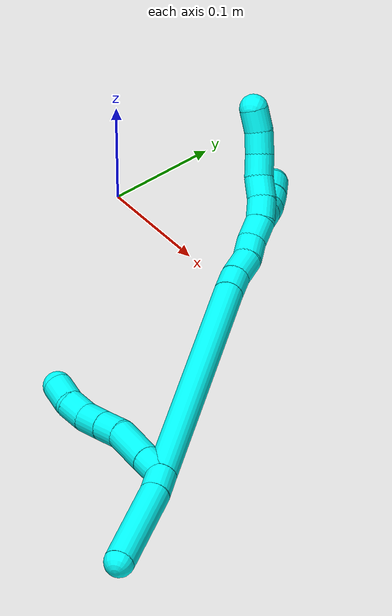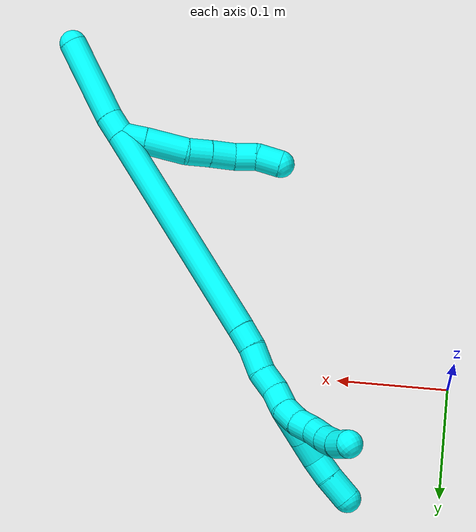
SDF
<sdf version="1.7">
 <world name="default">
  <model name="3">
   <static>0</static>
   <link name="3">
    <collision name="collision-cylinder-e_1_2_8">
     <pose>0.000132 0.008292 -0.007292 -2.29215 0.011968 -0.026463</pose>
     <geometry><cylinder><radius>0.0125</radius><length>0.022086</length></cylinder></geometry>
     <surface>
      <friction><ode><mu>1.16</mu><mu2>1.16</mu2><slip1>0</slip1><slip2>0</slip2></ode></friction>
      <contact><ode><kp>1e+06</kp><kd>1</kd><max_vel>0</max_vel><min_depth>0.001</min_depth></ode></contact>
     </surface>
    </collision>
    <visual name="visual-cylinder-e_1_2_8">
     <pose>0.000132 0.008292 -0.007292 -2.29215 0.011968 -0.026463</pose>
     <geometry><cylinder><radius>0.0125</radius><length>0.022086</length></cylinder></geometry>
     <material><ambient>0.003922 1 0.996078 1</ambient></material>
    </visual>
    <collision name="collision-cylinder-e_2_8_9">
     <pose>3e-06 0.030826 -0.028237 -2.33503 -0.013257 0.031069</pose>
     <geometry><cylinder><radius>0.0125</radius><length>0.039461</length></cylinder></geometry>
     <surface>
      <friction><ode><mu>1.16</mu><mu2>1.16</mu2><slip1>0</slip1><slip2>0</slip2></ode></friction>
      <contact><ode><kp>1e+06</kp><kd>1</kd><max_vel>0</max_vel><min_depth>0.001</min_depth></ode></contact>
     </surface>
    </collision>
    <visual name="visual-cylinder-e_2_8_9">
     <pose>3e-06 0.030826 -0.028237 -2.33503 -0.013257 0.031069</pose>
     <geometry><cylinder><radius>0.0125</radius><length>0.039461</length></cylinder></geometry>
     <material><ambient>0.003922 1 0.996078 1</ambient></material>
    </visual>
    <collision name="collision-cylinder-e_3_9_10">
     <pose>-0.001607 0.054325 -0.047343 -2.10325 -0.124838 0.217873</pose>
     <geometry><cylinder><radius>0.0125</radius><length>0.021657</length></cylinder></geometry>
     <surface>
      <friction><ode><mu>1.16</mu><mu2>1.16</mu2><slip1>0</slip1><slip2>0</slip2></ode></friction>
      <contact><ode><kp>1e+06</kp><kd>1</kd><max_vel>0</max_vel><min_depth>0.001</min_depth></ode></contact>
     </surface>
    </collision>
    <visual name="visual-cylinder-e_3_9_10">
     <pose>-0.001607 0.054325 -0.047343 -2.10325 -0.124838 0.217873</pose>
     <geometry><cylinder><radius>0.0125</radius><length>0.021657</length></cylinder></geometry>
     <material><ambient>0.003922 1 0.996078 1</ambient></material>
    </visual>
    <collision name="collision-cylinder-e_4_10_11">
     <pose>-0.004659 0.073413 -0.058971 -2.13153 -0.1457 0.262491</pose>
     <geometry><cylinder><radius>0.0125</radius><length>0.023467</length></cylinder></geometry>
     <surface>
      <friction><ode><mu>1.16</mu><mu2>1.16</mu2><slip1>0</slip1><slip2>0</slip2></ode></friction>
      <contact><ode><kp>1e+06</kp><kd>1</kd><max_vel>0</max_vel><min_depth>0.001</min_depth></ode></contact>
     </surface>
    </collision>
    <visual name="visual-cylinder-e_4_10_11">
     <pose>-0.004659 0.073413 -0.058971 -2.13153 -0.1457 0.262491</pose>
     <geometry><cylinder><radius>0.0125</radius><length>0.023467</length></cylinder></geometry>
     <material><ambient>0.003922 1 0.996078 1</ambient></material>
    </visual>
    <collision name="collision-cylinder-e_5_11_12">
     <pose>-0.004397 0.091751 -0.070788 -2.1565 0.190248 -0.351897</pose>
     <geometry><cylinder><radius>0.0125</radius><length>0.020791</length></cylinder></geometry>
     <surface>
      <friction><ode><mu>1.16</mu><mu2>1.16</mu2><slip1>0</slip1><slip2>0</slip2></ode></friction>
      <contact><ode><kp>1e+06</kp><kd>1</kd><max_vel>0</max_vel><min_depth>0.001</min_depth></ode></contact>
     </surface>
    </collision>
    <visual name="visual-cylinder-e_5_11_12">
     <pose>-0.004397 0.091751 -0.070788 -2.1565 0.190248 -0.351897</pose>
     <geometry><cylinder><radius>0.0125</radius><length>0.020791</length></cylinder></geometry>
     <material><ambient>0.003922 1 0.996078 1</ambient></material>
    </visual>
    <collision name="collision-cylinder-e_6_12_6">
     <pose>-0.0015 0.10758 -0.084945 -2.43133 0.082691 -0.222185</pose>
     <geometry><cylinder><radius>0.0125</radius><length>0.022538</length></cylinder></geometry>
     <surface>
      <friction><ode><mu>1.16</mu><mu2>1.16</mu2><slip1>0</slip1><slip2>0</slip2></ode></friction>
      <contact><ode><kp>1e+06</kp><kd>1</kd><max_vel>0</max_vel><min_depth>0.001</min_depth></ode></contact>
     </surface>
    </collision>
    <visual name="visual-cylinder-e_6_12_6">
     <pose>-0.0015 0.10758 -0.084945 -2.43133 0.082691 -0.222185</pose>
     <geometry><cylinder><radius>0.0125</radius><length>0.022538</length></cylinder></geometry>
     <material><ambient>0.003922 1 0.996078 1</ambient></material>
    </visual>
    <collision name="collision-cylinder-e_1_2_13">
     <pose>-6.1e-05 6.7e-05 0.010565 -0.006358 -0.005777 1.8e-05</pose>
     <geometry><cylinder><radius>0.0125</radius><length>0.02113</length></cylinder></geometry>
     <surface>
      <friction><ode><mu>1.16</mu><mu2>1.16</mu2><slip1>0</slip1><slip2>0</slip2></ode></friction>
      <contact><ode><kp>1e+06</kp><kd>1</kd><max_vel>0</max_vel><min_depth>0.001</min_depth></ode></contact>
     </surface>
    </collision>
    <visual name="visual-cylinder-e_1_2_13">
     <pose>-6.1e-05 6.7e-05 0.010565 -0.006358 -0.005777 1.8e-05</pose>
     <geometry><cylinder><radius>0.0125</radius><length>0.02113</length></cylinder></geometry>
     <material><ambient>0.003922 1 0.996078 1</ambient></material>
    </visual>
    <collision name="collision-cylinder-e_2_13_5">
     <pose>0.002255 0.003777 0.060323 -0.092673 0.060325 -0.002798</pose>
     <geometry><cylinder><radius>0.0125</radius><length>0.07887</length></cylinder></geometry>
     <surface>
      <friction><ode><mu>1.16</mu><mu2>1.16</mu2><slip1>0</slip1><slip2>0</slip2></ode></friction>
      <contact><ode><kp>1e+06</kp><kd>1</kd><max_vel>0</max_vel><min_depth>0.001</min_depth></ode></contact>
     </surface>
    </collision>
    <visual name="visual-cylinder-e_2_13_5">
     <pose>0.002255 0.003777 0.060323 -0.092673 0.060325 -0.002798</pose>
     <geometry><cylinder><radius>0.0125</radius><length>0.07887</length></cylinder></geometry>
     <material><ambient>0.003922 1 0.996078 1</ambient></material>
    </visual>
    <collision name="collision-cylinder-e_1_2_14">
     <pose>-0.001359 -0.000959 -0.106449 3.13259 -0.012765 -1.91285</pose>
     <geometry><cylinder><radius>0.0125</radius><length>0.212925</length></cylinder></geometry>
     <surface>
      <friction><ode><mu>1.16</mu><mu2>1.16</mu2><slip1>0</slip1><slip2>0</slip2></ode></friction>
      <contact><ode><kp>1e+06</kp><kd>1</kd><max_vel>0</max_vel><min_depth>0.001</min_depth></ode></contact>
     </surface>
    </collision>
    <visual name="visual-cylinder-e_1_2_14">
     <pose>-0.001359 -0.000959 -0.106449 3.13259 -0.012765 -1.91285</pose>
     <geometry><cylinder><radius>0.0125</radius><length>0.212925</length></cylinder></geometry>
     <material><ambient>0.003922 1 0.996078 1</ambient></material>
    </visual>
    <collision name="collision-cylinder-e_2_14_15">
     <pose>-0.003182 -0.002209 -0.223209 3.1133 -0.045004 -2.01935</pose>
     <geometry><cylinder><radius>0.0125</radius><length>0.02065</length></cylinder></geometry>
     <surface>
      <friction><ode><mu>1.16</mu><mu2>1.16</mu2><slip1>0</slip1><slip2>0</slip2></ode></friction>
      <contact><ode><kp>1e+06</kp><kd>1</kd><max_vel>0</max_vel><min_depth>0.001</min_depth></ode></contact>
     </surface>
    </collision>
    <visual name="visual-cylinder-e_2_14_15">
     <pose>-0.003182 -0.002209 -0.223209 3.1133 -0.045004 -2.01935</pose>
     <geometry><cylinder><radius>0.0125</radius><length>0.02065</length></cylinder></geometry>
     <material><ambient>0.003922 1 0.996078 1</ambient></material>
    </visual>
    <collision name="collision-cylinder-e_3_15_16">
     <pose>-0.004718 -0.004592 -0.245253 2.96524 -0.089623 -0.938822</pose>
     <geometry><cylinder><radius>0.0125</radius><length>0.023931</length></cylinder></geometry>
     <surface>
      <friction><ode><mu>1.16</mu><mu2>1.16</mu2><slip1>0</slip1><slip2>0</slip2></ode></friction>
      <contact><ode><kp>1e+06</kp><kd>1</kd><max_vel>0</max_vel><min_depth>0.001</min_depth></ode></contact>
     </surface>
    </collision>
    <visual name="visual-cylinder-e_3_15_16">
     <pose>-0.004718 -0.004592 -0.245253 2.96524 -0.089623 -0.938822</pose>
     <geometry><cylinder><radius>0.0125</radius><length>0.023931</length></cylinder></geometry>
     <material><ambient>0.003922 1 0.996078 1</ambient></material>
    </visual>
    <collision name="collision-cylinder-e_4_16_17">
     <pose>-0.005348 -0.006143 -0.267555 -3.09062 0.041643 -1.36984</pose>
     <geometry><cylinder><radius>0.0125</radius><length>0.021186</length></cylinder></geometry>
     <surface>
      <friction><ode><mu>1.16</mu><mu2>1.16</mu2><slip1>0</slip1><slip2>0</slip2></ode></friction>
      <contact><ode><kp>1e+06</kp><kd>1</kd><max_vel>0</max_vel><min_depth>0.001</min_depth></ode></contact>
     </surface>
    </collision>
    <visual name="visual-cylinder-e_4_16_17">
     <pose>-0.005348 -0.006143 -0.267555 -3.09062 0.041643 -1.36984</pose>
     <geometry><cylinder><radius>0.0125</radius><length>0.021186</length></cylinder></geometry>
     <material><ambient>0.003922 1 0.996078 1</ambient></material>
    </visual>
    <collision name="collision-cylinder-e_5_17_1">
     <pose>-0.002083 -0.007619 -0.288199 2.94412 0.268213 1.87495</pose>
     <geometry><cylinder><radius>0.0125</radius><length>0.021308</length></cylinder></geometry>
     <surface>
      <friction><ode><mu>1.16</mu><mu2>1.16</mu2><slip1>0</slip1><slip2>0</slip2></ode></friction>
      <contact><ode><kp>1e+06</kp><kd>1</kd><max_vel>0</max_vel><min_depth>0.001</min_depth></ode></contact>
     </surface>
    </collision>
    <visual name="visual-cylinder-e_5_17_1">
     <pose>-0.002083 -0.007619 -0.288199 2.94412 0.268213 1.87495</pose>
     <geometry><cylinder><radius>0.0125</radius><length>0.021308</length></cylinder></geometry>
     <material><ambient>0.003922 1 0.996078 1</ambient></material>
    </visual>
    <collision name="collision-cylinder-e_1_1_18">
     <pose>-0.007381 -0.007101 -0.311873 -2.95741 -0.530808 2.48655</pose>
     <geometry><cylinder><radius>0.0125</radius><length>0.032085</length></cylinder></geometry>
     <surface>
      <friction><ode><mu>1.16</mu><mu2>1.16</mu2><slip1>0</slip1><slip2>0</slip2></ode></friction>
      <contact><ode><kp>1e+06</kp><kd>1</kd><max_vel>0</max_vel><min_depth>0.001</min_depth></ode></contact>
     </surface>
    </collision>
    <visual name="visual-cylinder-e_1_1_18">
     <pose>-0.007381 -0.007101 -0.311873 -2.95741 -0.530808 2.48655</pose>
     <geometry><cylinder><radius>0.0125</radius><length>0.032085</length></cylinder></geometry>
     <material><ambient>0.003922 1 0.996078 1</ambient></material>
    </visual>
    <collision name="collision-cylinder-e_2_18_19">
     <pose>-0.020895 -0.002866 -0.335266 -2.96959 -0.497077 2.48663</pose>
     <geometry><cylinder><radius>0.0125</radius><length>0.022614</length></cylinder></geometry>
     <surface>
      <friction><ode><mu>1.16</mu><mu2>1.16</mu2><slip1>0</slip1><slip2>0</slip2></ode></friction>
      <contact><ode><kp>1e+06</kp><kd>1</kd><max_vel>0</max_vel><min_depth>0.001</min_depth></ode></contact>
     </surface>
    </collision>
    <visual name="visual-cylinder-e_2_18_19">
     <pose>-0.020895 -0.002866 -0.335266 -2.96959 -0.497077 2.48663</pose>
     <geometry><cylinder><radius>0.0125</radius><length>0.022614</length></cylinder></geometry>
     <material><ambient>0.003922 1 0.996078 1</ambient></material>
    </visual>
    <collision name="collision-cylinder-e_3_19_20">
     <pose>-0.028282 7e-05 -0.354816 -3.01568 -0.20021 2.02061</pose>
     <geometry><cylinder><radius>0.0125</radius><length>0.020072</length></cylinder></geometry>
     <surface>
      <friction><ode><mu>1.16</mu><mu2>1.16</mu2><slip1>0</slip1><slip2>0</slip2></ode></friction>
      <contact><ode><kp>1e+06</kp><kd>1</kd><max_vel>0</max_vel><min_depth>0.001</min_depth></ode></contact>
     </surface>
    </collision>
    <visual name="visual-cylinder-e_3_19_20">
     <pose>-0.028282 7e-05 -0.354816 -3.01568 -0.20021 2.02061</pose>
     <geometry><cylinder><radius>0.0125</radius><length>0.020072</length></cylinder></geometry>
     <material><ambient>0.003922 1 0.996078 1</ambient></material>
    </visual>
    <collision name="collision-cylinder-e_4_20_4">
     <pose>-0.033219 0.004009 -0.376539 -2.91938 -0.235336 1.62862</pose>
     <geometry><cylinder><radius>0.0125</radius><length>0.025229</length></cylinder></geometry>
     <surface>
      <friction><ode><mu>1.16</mu><mu2>1.16</mu2><slip1>0</slip1><slip2>0</slip2></ode></friction>
      <contact><ode><kp>1e+06</kp><kd>1</kd><max_vel>0</max_vel><min_depth>0.001</min_depth></ode></contact>
     </surface>
    </collision>
    <visual name="visual-cylinder-e_4_20_4">
     <pose>-0.033219 0.004009 -0.376539 -2.91938 -0.235336 1.62862</pose>
     <geometry><cylinder><radius>0.0125</radius><length>0.025229</length></cylinder></geometry>
     <material><ambient>0.003922 1 0.996078 1</ambient></material>
    </visual>
    <collision name="collision-cylinder-e_1_1_21">
     <pose>0.004646 -0.008866 -0.307446 -3.05802 0.401311 -2.73612</pose>
     <geometry><cylinder><radius>0.0125</radius><length>0.02</length></cylinder></geometry>
     <surface>
      <friction><ode><mu>1.16</mu><mu2>1.16</mu2><slip1>0</slip1><slip2>0</slip2></ode></friction>
      <contact><ode><kp>1e+06</kp><kd>1</kd><max_vel>0</max_vel><min_depth>0.001</min_depth></ode></contact>
     </surface>
    </collision>
    <visual name="visual-cylinder-e_1_1_21">
     <pose>0.004646 -0.008866 -0.307446 -3.05802 0.401311 -2.73612</pose>
     <geometry><cylinder><radius>0.0125</radius><length>0.02</length></cylinder></geometry>
     <material><ambient>0.003922 1 0.996078 1</ambient></material>
    </visual>
    <collision name="collision-cylinder-e_2_21_22">
     <pose>0.013972 -0.005794 -0.324701 -2.86388 0.572715 -2.2553</pose>
     <geometry><cylinder><radius>0.0125</radius><length>0.02</length></cylinder></geometry>
     <surface>
      <friction><ode><mu>1.16</mu><mu2>1.16</mu2><slip1>0</slip1><slip2>0</slip2></ode></friction>
      <contact><ode><kp>1e+06</kp><kd>1</kd><max_vel>0</max_vel><min_depth>0.001</min_depth></ode></contact>
     </surface>
    </collision>
    <visual name="visual-cylinder-e_2_21_22">
     <pose>0.013972 -0.005794 -0.324701 -2.86388 0.572715 -2.2553</pose>
     <geometry><cylinder><radius>0.0125</radius><length>0.02</length></cylinder></geometry>
     <material><ambient>0.003922 1 0.996078 1</ambient></material>
    </visual>
    <collision name="collision-cylinder-e_3_22_23">
     <pose>0.026211 -0.003326 -0.340095 -3.11925 0.75049 -3.08489</pose>
     <geometry><cylinder><radius>0.0125</radius><length>0.02</length></cylinder></geometry>
     <surface>
      <friction><ode><mu>1.16</mu><mu2>1.16</mu2><slip1>0</slip1><slip2>0</slip2></ode></friction>
      <contact><ode><kp>1e+06</kp><kd>1</kd><max_vel>0</max_vel><min_depth>0.001</min_depth></ode></contact>
     </surface>
    </collision>
    <visual name="visual-cylinder-e_3_22_23">
     <pose>0.026211 -0.003326 -0.340095 -3.11925 0.75049 -3.08489</pose>
     <geometry><cylinder><radius>0.0125</radius><length>0.02</length></cylinder></geometry>
     <material><ambient>0.003922 1 0.996078 1</ambient></material>
    </visual>
    <collision name="collision-cylinder-e_4_23_24">
     <pose>0.04082 -0.002718 -0.353663 -3.07058 0.89289 -2.99344</pose>
     <geometry><cylinder><radius>0.0125</radius><length>0.02</length></cylinder></geometry>
     <surface>
      <friction><ode><mu>1.16</mu><mu2>1.16</mu2><slip1>0</slip1><slip2>0</slip2></ode></friction>
      <contact><ode><kp>1e+06</kp><kd>1</kd><max_vel>0</max_vel><min_depth>0.001</min_depth></ode></contact>
     </surface>
    </collision>
    <visual name="visual-cylinder-e_4_23_24">
     <pose>0.04082 -0.002718 -0.353663 -3.07058 0.89289 -2.99344</pose>
     <geometry><cylinder><radius>0.0125</radius><length>0.02</length></cylinder></geometry>
     <material><ambient>0.003922 1 0.996078 1</ambient></material>
    </visual>
    <collision name="collision-cylinder-e_5_24_3">
     <pose>0.057401 -0.000585 -0.364374 -2.77939 1.07422 -2.54498</pose>
     <geometry><cylinder><radius>0.0125</radius><length>0.02</length></cylinder></geometry>
     <surface>
      <friction><ode><mu>1.16</mu><mu2>1.16</mu2><slip1>0</slip1><slip2>0</slip2></ode></friction>
      <contact><ode><kp>1e+06</kp><kd>1</kd><max_vel>0</max_vel><min_depth>0.001</min_depth></ode></contact>
     </surface>
    </collision>
    <visual name="visual-cylinder-e_5_24_3">
     <pose>0.057401 -0.000585 -0.364374 -2.77939 1.07422 -2.54498</pose>
     <geometry><cylinder><radius>0.0125</radius><length>0.02</length></cylinder></geometry>
     <material><ambient>0.003922 1 0.996078 1</ambient></material>
    </visual>
    <collision name="collision-sphere-3">
     <pose>0.066193 0.001103 -0.368829 0 -0 0</pose>
     <geometry><sphere><radius>0.0125</radius></sphere></geometry>
     <surface>
      <friction><ode><mu>1.16</mu><mu2>1.16</mu2><slip1>0</slip1><slip2>0</slip2></ode></friction>
      <contact><ode><kp>1e+06</kp><kd>1</kd><max_vel>0</max_vel><min_depth>0.001</min_depth></ode></contact>
     </surface>
    </collision>
    <visual name="visual-sphere-3">
     <pose>0.066193 0.001103 -0.368829 0 -0 0</pose>
     <geometry><sphere><radius>0.0125</radius></sphere></geometry>
     <material><ambient>0.003922 1 0.996078 1</ambient></material>
    </visual>
    <collision name="collision-sphere-24">
     <pose>0.048608 -0.002273 -0.359919 0 -0 0</pose>
     <geometry><sphere><radius>0.0125</radius></sphere></geometry>
     <surface>
      <friction><ode><mu>1.16</mu><mu2>1.16</mu2><slip1>0</slip1><slip2>0</slip2></ode></friction>
      <contact><ode><kp>1e+06</kp><kd>1</kd><max_vel>0</max_vel><min_depth>0.001</min_depth></ode></contact>
     </surface>
    </collision>
    <visual name="visual-sphere-24">
     <pose>0.048608 -0.002273 -0.359919 0 -0 0</pose>
     <geometry><sphere><radius>0.0125</radius></sphere></geometry>
     <material><ambient>0.003922 1 0.996078 1</ambient></material>
    </visual>
    <collision name="collision-sphere-23">
     <pose>0.033031 -0.003163 -0.347407 0 -0 0</pose>
     <geometry><sphere><radius>0.0125</radius></sphere></geometry>
     <surface>
      <friction><ode><mu>1.16</mu><mu2>1.16</mu2><slip1>0</slip1><slip2>0</slip2></ode></friction>
      <contact><ode><kp>1e+06</kp><kd>1</kd><max_vel>0</max_vel><min_depth>0.001</min_depth></ode></contact>
     </surface>
    </collision>
    <visual name="visual-sphere-23">
     <pose>0.033031 -0.003163 -0.347407 0 -0 0</pose>
     <geometry><sphere><radius>0.0125</radius></sphere></geometry>
     <material><ambient>0.003922 1 0.996078 1</ambient></material>
    </visual>
    <collision name="collision-sphere-22">
     <pose>0.019391 -0.00349 -0.332784 0 -0 0</pose>
     <geometry><sphere><radius>0.0125</radius></sphere></geometry>
     <surface>
      <friction><ode><mu>1.16</mu><mu2>1.16</mu2><slip1>0</slip1><slip2>0</slip2></ode></friction>
      <contact><ode><kp>1e+06</kp><kd>1</kd><max_vel>0</max_vel><min_depth>0.001</min_depth></ode></contact>
     </surface>
    </collision>
    <visual name="visual-sphere-22">
     <pose>0.019391 -0.00349 -0.332784 0 -0 0</pose>
     <geometry><sphere><radius>0.0125</radius></sphere></geometry>
     <material><ambient>0.003922 1 0.996078 1</ambient></material>
    </visual>
    <collision name="collision-sphere-21">
     <pose>0.008552 -0.008098 -0.316619 0 -0 0</pose>
     <geometry><sphere><radius>0.0125</radius></sphere></geometry>
     <surface>
      <friction><ode><mu>1.16</mu><mu2>1.16</mu2><slip1>0</slip1><slip2>0</slip2></ode></friction>
      <contact><ode><kp>1e+06</kp><kd>1</kd><max_vel>0</max_vel><min_depth>0.001</min_depth></ode></contact>
     </surface>
    </collision>
    <visual name="visual-sphere-21">
     <pose>0.008552 -0.008098 -0.316619 0 -0 0</pose>
     <geometry><sphere><radius>0.0125</radius></sphere></geometry>
     <material><ambient>0.003922 1 0.996078 1</ambient></material>
    </visual>
    <collision name="collision-sphere-4">
     <pose>-0.036161 0.006712 -0.388504 0 -0 0</pose>
     <geometry><sphere><radius>0.0125</radius></sphere></geometry>
     <surface>
      <friction><ode><mu>1.16</mu><mu2>1.16</mu2><slip1>0</slip1><slip2>0</slip2></ode></friction>
      <contact><ode><kp>1e+06</kp><kd>1</kd><max_vel>0</max_vel><min_depth>0.001</min_depth></ode></contact>
     </surface>
    </collision>
    <visual name="visual-sphere-4">
     <pose>-0.036161 0.006712 -0.388504 0 -0 0</pose>
     <geometry><sphere><radius>0.0125</radius></sphere></geometry>
     <material><ambient>0.003922 1 0.996078 1</ambient></material>
    </visual>
    <collision name="collision-sphere-20">
     <pose>-0.030278 0.001305 -0.364574 0 -0 0</pose>
     <geometry><sphere><radius>0.0125</radius></sphere></geometry>
     <surface>
      <friction><ode><mu>1.16</mu><mu2>1.16</mu2><slip1>0</slip1><slip2>0</slip2></ode></friction>
      <contact><ode><kp>1e+06</kp><kd>1</kd><max_vel>0</max_vel><min_depth>0.001</min_depth></ode></contact>
     </surface>
    </collision>
    <visual name="visual-sphere-20">
     <pose>-0.030278 0.001305 -0.364574 0 -0 0</pose>
     <geometry><sphere><radius>0.0125</radius></sphere></geometry>
     <material><ambient>0.003922 1 0.996078 1</ambient></material>
    </visual>
    <collision name="collision-sphere-12">
     <pose>-0.002431 0.100257 -0.07643 0 -0 0</pose>
     <geometry><sphere><radius>0.0125</radius></sphere></geometry>
     <surface>
      <friction><ode><mu>1.16</mu><mu2>1.16</mu2><slip1>0</slip1><slip2>0</slip2></ode></friction>
      <contact><ode><kp>1e+06</kp><kd>1</kd><max_vel>0</max_vel><min_depth>0.001</min_depth></ode></contact>
     </surface>
    </collision>
    <visual name="visual-sphere-12">
     <pose>-0.002431 0.100257 -0.07643 0 -0 0</pose>
     <geometry><sphere><radius>0.0125</radius></sphere></geometry>
     <material><ambient>0.003922 1 0.996078 1</ambient></material>
    </visual>
    <collision name="collision-sphere-11">
     <pose>-0.006362 0.083244 -0.065145 0 -0 0</pose>
     <geometry><sphere><radius>0.0125</radius></sphere></geometry>
     <surface>
      <friction><ode><mu>1.16</mu><mu2>1.16</mu2><slip1>0</slip1><slip2>0</slip2></ode></friction>
      <contact><ode><kp>1e+06</kp><kd>1</kd><max_vel>0</max_vel><min_depth>0.001</min_depth></ode></contact>
     </surface>
    </collision>
    <visual name="visual-sphere-11">
     <pose>-0.006362 0.083244 -0.065145 0 -0 0</pose>
     <geometry><sphere><radius>0.0125</radius></sphere></geometry>
     <material><ambient>0.003922 1 0.996078 1</ambient></material>
    </visual>
    <collision name="collision-sphere-10">
     <pose>-0.002955 0.063582 -0.052798 0 -0 0</pose>
     <geometry><sphere><radius>0.0125</radius></sphere></geometry>
     <surface>
      <friction><ode><mu>1.16</mu><mu2>1.16</mu2><slip1>0</slip1><slip2>0</slip2></ode></friction>
      <contact><ode><kp>1e+06</kp><kd>1</kd><max_vel>0</max_vel><min_depth>0.001</min_depth></ode></contact>
     </surface>
    </collision>
    <visual name="visual-sphere-10">
     <pose>-0.002955 0.063582 -0.052798 0 -0 0</pose>
     <geometry><sphere><radius>0.0125</radius></sphere></geometry>
     <material><ambient>0.003922 1 0.996078 1</ambient></material>
    </visual>
    <collision name="collision-sphere-9">
     <pose>-0.000259 0.045068 -0.041889 0 -0 0</pose>
     <geometry><sphere><radius>0.0125</radius></sphere></geometry>
     <surface>
      <friction><ode><mu>1.16</mu><mu2>1.16</mu2><slip1>0</slip1><slip2>0</slip2></ode></friction>
      <contact><ode><kp>1e+06</kp><kd>1</kd><max_vel>0</max_vel><min_depth>0.001</min_depth></ode></contact>
     </surface>
    </collision>
    <visual name="visual-sphere-9">
     <pose>-0.000259 0.045068 -0.041889 0 -0 0</pose>
     <geometry><sphere><radius>0.0125</radius></sphere></geometry>
     <material><ambient>0.003922 1 0.996078 1</ambient></material>
    </visual>
    <collision name="collision-sphere-2">
     <geometry><sphere><radius>0.0125</radius></sphere></geometry>
     <surface>
      <friction><ode><mu>1.16</mu><mu2>1.16</mu2><slip1>0</slip1><slip2>0</slip2></ode></friction>
      <contact><ode><kp>1e+06</kp><kd>1</kd><max_vel>0</max_vel><min_depth>0.001</min_depth></ode></contact>
     </surface>
    </collision>
    <visual name="visual-sphere-2">
     <geometry><sphere><radius>0.0125</radius></sphere></geometry>
     <material><ambient>0.003922 1 0.996078 1</ambient></material>
    </visual>
    <collision name="collision-sphere-19">
     <pose>-0.026286 -0.001165 -0.345058 0 -0 0</pose>
     <geometry><sphere><radius>0.0125</radius></sphere></geometry>
     <surface>
      <friction><ode><mu>1.16</mu><mu2>1.16</mu2><slip1>0</slip1><slip2>0</slip2></ode></friction>
      <contact><ode><kp>1e+06</kp><kd>1</kd><max_vel>0</max_vel><min_depth>0.001</min_depth></ode></contact>
     </surface>
    </collision>
    <visual name="visual-sphere-19">
     <pose>-0.026286 -0.001165 -0.345058 0 -0 0</pose>
     <geometry><sphere><radius>0.0125</radius></sphere></geometry>
     <material><ambient>0.003922 1 0.996078 1</ambient></material>
    </visual>
    <collision name="collision-sphere-8">
     <pose>0.000264 0.016584 -0.014585 0 -0 0</pose>
     <geometry><sphere><radius>0.0125</radius></sphere></geometry>
     <surface>
      <friction><ode><mu>1.16</mu><mu2>1.16</mu2><slip1>0</slip1><slip2>0</slip2></ode></friction>
      <contact><ode><kp>1e+06</kp><kd>1</kd><max_vel>0</max_vel><min_depth>0.001</min_depth></ode></contact>
     </surface>
    </collision>
    <visual name="visual-sphere-8">
     <pose>0.000264 0.016584 -0.014585 0 -0 0</pose>
     <geometry><sphere><radius>0.0125</radius></sphere></geometry>
     <material><ambient>0.003922 1 0.996078 1</ambient></material>
    </visual>
    <collision name="collision-sphere-6">
     <pose>-0.000569 0.114903 -0.093461 0 -0 0</pose>
     <geometry><sphere><radius>0.0125</radius></sphere></geometry>
     <surface>
      <friction><ode><mu>1.16</mu><mu2>1.16</mu2><slip1>0</slip1><slip2>0</slip2></ode></friction>
      <contact><ode><kp>1e+06</kp><kd>1</kd><max_vel>0</max_vel><min_depth>0.001</min_depth></ode></contact>
     </surface>
    </collision>
    <visual name="visual-sphere-6">
     <pose>-0.000569 0.114903 -0.093461 0 -0 0</pose>
     <geometry><sphere><radius>0.0125</radius></sphere></geometry>
     <material><ambient>0.003922 1 0.996078 1</ambient></material>
    </visual>
    <collision name="collision-sphere-13">
     <pose>-0.000122 0.000134 0.021129 0 -0 0</pose>
     <geometry><sphere><radius>0.0125</radius></sphere></geometry>
     <surface>
      <friction><ode><mu>1.16</mu><mu2>1.16</mu2><slip1>0</slip1><slip2>0</slip2></ode></friction>
      <contact><ode><kp>1e+06</kp><kd>1</kd><max_vel>0</max_vel><min_depth>0.001</min_depth></ode></contact>
     </surface>
    </collision>
    <visual name="visual-sphere-13">
     <pose>-0.000122 0.000134 0.021129 0 -0 0</pose>
     <geometry><sphere><radius>0.0125</radius></sphere></geometry>
     <material><ambient>0.003922 1 0.996078 1</ambient></material>
    </visual>
    <collision name="collision-sphere-5">
     <pose>0.004633 0.00742 0.099518 0 -0 0</pose>
     <geometry><sphere><radius>0.0125</radius></sphere></geometry>
     <surface>
      <friction><ode><mu>1.16</mu><mu2>1.16</mu2><slip1>0</slip1><slip2>0</slip2></ode></friction>
      <contact><ode><kp>1e+06</kp><kd>1</kd><max_vel>0</max_vel><min_depth>0.001</min_depth></ode></contact>
     </surface>
    </collision>
    <visual name="visual-sphere-5">
     <pose>0.004633 0.00742 0.099518 0 -0 0</pose>
     <geometry><sphere><radius>0.0125</radius></sphere></geometry>
     <material><ambient>0.003922 1 0.996078 1</ambient></material>
    </visual>
    <collision name="collision-sphere-14">
     <pose>-0.002718 -0.001917 -0.212899 0 -0 0</pose>
     <geometry><sphere><radius>0.0125</radius></sphere></geometry>
     <surface>
      <friction><ode><mu>1.16</mu><mu2>1.16</mu2><slip1>0</slip1><slip2>0</slip2></ode></friction>
      <contact><ode><kp>1e+06</kp><kd>1</kd><max_vel>0</max_vel><min_depth>0.001</min_depth></ode></contact>
     </surface>
    </collision>
    <visual name="visual-sphere-14">
     <pose>-0.002718 -0.001917 -0.212899 0 -0 0</pose>
     <geometry><sphere><radius>0.0125</radius></sphere></geometry>
     <material><ambient>0.003922 1 0.996078 1</ambient></material>
    </visual>
    <collision name="collision-sphere-15">
     <pose>-0.003647 -0.002501 -0.23352 0 -0 0</pose>
     <geometry><sphere><radius>0.0125</radius></sphere></geometry>
     <surface>
      <friction><ode><mu>1.16</mu><mu2>1.16</mu2><slip1>0</slip1><slip2>0</slip2></ode></friction>
      <contact><ode><kp>1e+06</kp><kd>1</kd><max_vel>0</max_vel><min_depth>0.001</min_depth></ode></contact>
     </surface>
    </collision>
    <visual name="visual-sphere-15">
     <pose>-0.003647 -0.002501 -0.23352 0 -0 0</pose>
     <geometry><sphere><radius>0.0125</radius></sphere></geometry>
     <material><ambient>0.003922 1 0.996078 1</ambient></material>
    </visual>
    <collision name="collision-sphere-16">
     <pose>-0.005789 -0.006682 -0.256985 0 -0 0</pose>
     <geometry><sphere><radius>0.0125</radius></sphere></geometry>
     <surface>
      <friction><ode><mu>1.16</mu><mu2>1.16</mu2><slip1>0</slip1><slip2>0</slip2></ode></friction>
      <contact><ode><kp>1e+06</kp><kd>1</kd><max_vel>0</max_vel><min_depth>0.001</min_depth></ode></contact>
     </surface>
    </collision>
    <visual name="visual-sphere-16">
     <pose>-0.005789 -0.006682 -0.256985 0 -0 0</pose>
     <geometry><sphere><radius>0.0125</radius></sphere></geometry>
     <material><ambient>0.003922 1 0.996078 1</ambient></material>
    </visual>
    <collision name="collision-sphere-17">
     <pose>-0.004907 -0.005604 -0.278125 0 -0 0</pose>
     <geometry><sphere><radius>0.0125</radius></sphere></geometry>
     <surface>
      <friction><ode><mu>1.16</mu><mu2>1.16</mu2><slip1>0</slip1><slip2>0</slip2></ode></friction>
      <contact><ode><kp>1e+06</kp><kd>1</kd><max_vel>0</max_vel><min_depth>0.001</min_depth></ode></contact>
     </surface>
    </collision>
    <visual name="visual-sphere-17">
     <pose>-0.004907 -0.005604 -0.278125 0 -0 0</pose>
     <geometry><sphere><radius>0.0125</radius></sphere></geometry>
     <material><ambient>0.003922 1 0.996078 1</ambient></material>
    </visual>
    <collision name="collision-sphere-1">
     <pose>0.00074 -0.009635 -0.298272 0 -0 0</pose>
     <geometry><sphere><radius>0.0125</radius></sphere></geometry>
     <surface>
      <friction><ode><mu>1.16</mu><mu2>1.16</mu2><slip1>0</slip1><slip2>0</slip2></ode></friction>
      <contact><ode><kp>1e+06</kp><kd>1</kd><max_vel>0</max_vel><min_depth>0.001</min_depth></ode></contact>
     </surface>
    </collision>
    <visual name="visual-sphere-1">
     <pose>0.00074 -0.009635 -0.298272 0 -0 0</pose>
     <geometry><sphere><radius>0.0125</radius></sphere></geometry>
     <material><ambient>0.003922 1 0.996078 1</ambient></material>
    </visual>
    <collision name="collision-sphere-18">
     <pose>-0.015503 -0.004567 -0.325474 0 -0 0</pose>
     <geometry><sphere><radius>0.0125</radius></sphere></geometry>
     <surface>
      <friction><ode><mu>1.16</mu><mu2>1.16</mu2><slip1>0</slip1><slip2>0</slip2></ode></friction>
      <contact><ode><kp>1e+06</kp><kd>1</kd><max_vel>0</max_vel><min_depth>0.001</min_depth></ode></contact>
     </surface>
    </collision>
    <visual name="visual-sphere-18">
     <pose>-0.015503 -0.004567 -0.325474 0 -0 0</pose>
     <geometry><sphere><radius>0.0125</radius></sphere></geometry>
     <material><ambient>0.003922 1 0.996078 1</ambient></material>
    </visual>
    <inertial>
     <pose>4.1e-05 0.010217 -0.153411 0 -0 0</pose>
     <mass>0.75</mass>
     <inertia>
      <ixx>-0.000982</ixx>
      <ixy>0</ixy>
      <ixz>0</ixz>
      <iyy>-0.000433</iyy>
      <iyz>0</iyz>
      <izz>-3.9e-05</izz>
     </inertia>
    </inertial>
   </link>
   <pose>0.314947 -0.203008 0.030975 -1.81645 -1.37819 -2.25954</pose>
  </model>
 </world>
</sdf>
